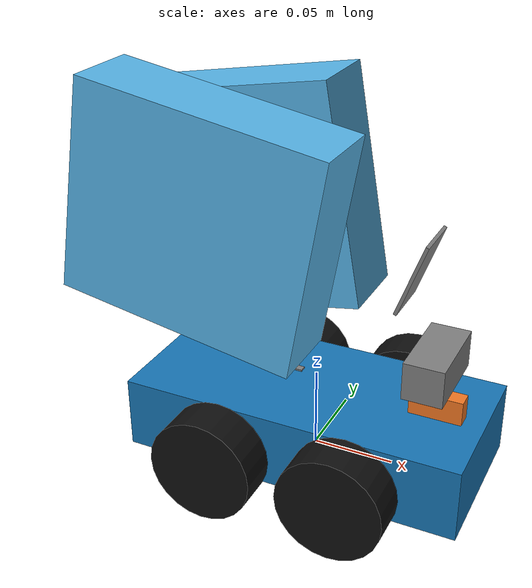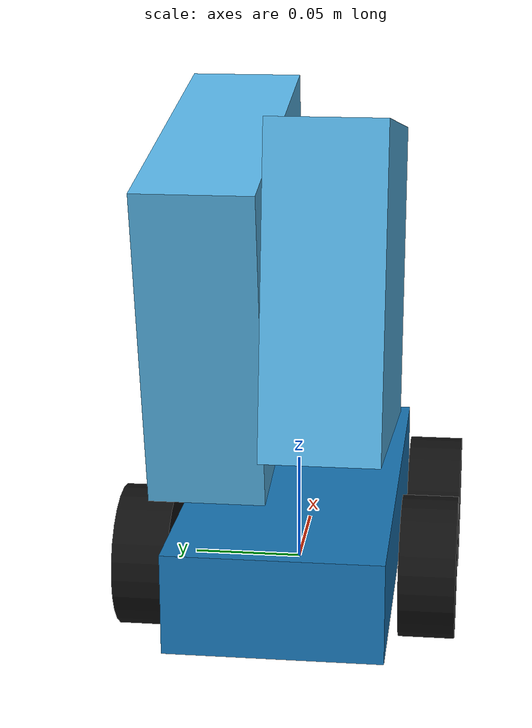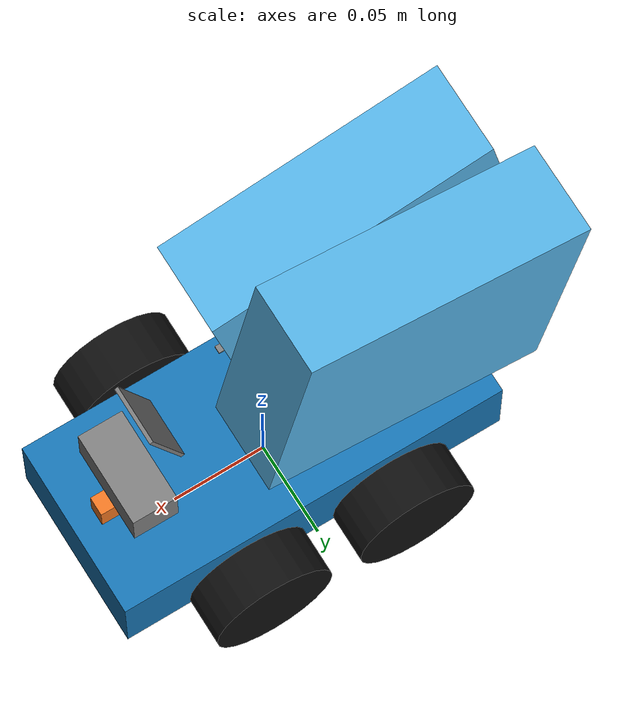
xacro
<?xml version="1.0"?>
<robot name="$(arg bot_name)" xmlns:xacro="http://www.ros.org/wiki/xacro">

    <xacro:include filename="common_properties.xacro" />
    <xacro:include filename="mobile_base.xacro" />
    <xacro:include filename="mobile_base_gazebo.xacro" />
    <xacro:include filename="ir.xacro" />
    <xacro:include filename="ultrasonic.xacro" />
    <xacro:include filename="camera.xacro" />
    <xacro:include filename="wheel.xacro"/>
    <xacro:include filename="mpu5060.xacro"/>
    <xacro:include filename="extension.xacro"/>

    <xacro:arg name="bot_name" default="generic"/>
    <xacro:bot bot_name="$(arg bot_name)"/>

</robot>

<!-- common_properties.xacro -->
<robot xmlns:xacro="http://www.ros.org/wiki/xacro">

    <!-- Original colors -->
    <material name="blue">
        <color rgba="0 0 0.7 1.0" />
    </material>

    <material name="grey">
        <color rgba="0.5 0.5 0.5 1.0" />
    </material>

    <material name="red">
        <color rgba="0.5 0 0 1.0"/>
    </material>

    <!-- Robot Base Colour (Blue, Green, Yellow) -->
    <material name="generic">
        <color rgba="0.09 0.46 0.71 1.0"/>
    </material>
    <material name="twix">
        <color rgba="1 1 0 1.0"/>
    </material>
    <material name="twirl">
        <color rgba="0 1 0 1.0"/>
    </material>

    <material name="accent_orange">
        <color rgba="0.95 0.47 0.14 1.0"/>
    </material>

    <material name="wood_brown">
        <color rgba="0.76 0.60 0.42 1.0"/>
    </material>

    <material name="light_brown">
        <color rgba="0.89 0.722 0.51 1"/>
    </material>

    <material name="headlight_warm">
        <color rgba="1.00 0.96 0.84 1.0"/>
    </material>

    <material name="rubber_black">
        <color rgba="0.06 0.06 0.06 1.0"/>
    </material>

    <material name="sensor_gray">
        <color rgba="0.6 0.6 0.6 1.0"/>
    </material>

    <!-- Inertia macros -->
    <xacro:macro name="box_inertia" params="m x y z o_xyz o_rpy">
        <inertial>
            <mass value="${m}" />
            <origin xyz="${o_xyz}" rpy="${o_rpy}" />
            <inertia
                ixx="${(m/12) * (y*y + z*z)}" ixy="0" ixz="0"
                iyy="${(m/12) * (x*x + z*z)}" iyz="0"
                izz="${(m/12) * (x*x + y*y)}" />
        </inertial>
    </xacro:macro>

    <xacro:macro name="cylinder_inertia" params="m r l o_xyz o_rpy">
        <inertial>
            <mass value="${m}" />
            <origin xyz="${o_xyz}" rpy="${o_rpy}" />
            <inertia
                ixx="${(m/12) * (3*r*r + l*l)}" ixy="0" ixz="0"
                iyy="${(m/12) * (3*r*r + l*l)}" iyz="0"
                izz="${(m/2) * (r*r)}" />
        </inertial>
    </xacro:macro>

    <xacro:macro name="sphere_inertia" params="m r o_xyz o_rpy">
        <inertial>
            <mass value="${m}" />
            <origin xyz="${o_xyz}" rpy="${o_rpy}" />
            <inertia
                ixx="${(2/5) * m * r * r}" ixy="0" ixz="0"
                iyy="${(2/5) * m * r * r}" iyz="0"
                izz="${(2/5) * m * r * r}" />
        </inertial>
    </xacro:macro>

</robot>

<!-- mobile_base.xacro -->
<robot xmlns:xacro="http://www.ros.org/wiki/xacro">
    <xacro:macro name="bot" params="bot_name" >

        <!-- Updated properties to match your robot model -->
        <xacro:property name="base_length" value="0.21"/>
        <xacro:property name="base_width"  value="0.095"/>
        <xacro:property name="base_height" value="0.045"/>
        <xacro:property name="wheel_radius" value="0.032"/>
        <xacro:property name="wheel_length" value="0.025"/>

        <!-- Base Footprint (empty)   -->
        <link name="${bot_name}_base_footprint"/>

        <!-- Fixed transform to base_link (body_link in your model) -->
        <joint name="${bot_name}_base_joint" type="fixed">
            <parent link="${bot_name}_base_footprint"/>
            <child link="${bot_name}_base_link"/>
            <origin xyz="0 0 0.02"/>
        </joint>

        <!-- Base link body  -->
        <link name="${bot_name}_base_link">
            <visual>
                <geometry>
                    <box size="${base_length} ${base_width} ${base_height}"/>
                </geometry>
                <origin xyz="0 0 0"/>
                <material name="${bot_name}"/>
            </visual>
            <collision>
                <geometry>
                    <box size="${base_length} ${base_width} ${base_height}"/>
                </geometry>
                <origin xyz="0 0 0"/>
            </collision>
            <xacro:box_inertia m="1.140" x="${base_length}" y="${base_width}" z="${base_height}"
                    o_xyz="0 0 0" o_rpy="0 0 0"/>
        </link>

        <!-- servo -->
        <joint name="${bot_name}_servo_joint" type="revolute">
            <parent link="${bot_name}_base_link"/>
            <child link="${bot_name}_servo_link"/>
            <origin xyz="0.076 0 0.03" rpy="0 0 0"/>
            <axis xyz="0 0 1"/>
            <limit lower="-1.5708" upper="1.5708" effort="10.0" velocity="5.0"/>
            <dynamics damping="0.1" friction="0.05"/>
        </joint>
        <link name="${bot_name}_servo_link">
            <visual>
                <origin xyz="0 0 0" rpy="0 0 0"/>
                <geometry>
                    <box size="0.032 0.01 0.015"/>
                </geometry>
                <material name="accent_orange"/>
            </visual>
            <collision>
                <origin xyz="0 0 0" rpy="0 0 0"/>
                <geometry>
                    <box size="0.032 0.01 0.015"/>
                </geometry>
            </collision>
            <xacro:box_inertia m="1.0" x="0.035" y="0.01" z="0.015"
                    o_xyz="0 0 0" o_rpy="0 0 0"/>
        </link>

        <!-- wheels -->
        <xacro:wheel bot_name="${bot_name}" prefix="rear_left" invert_x="-1" invert_y="1"/>
        <xacro:wheel bot_name="${bot_name}" prefix="rear_right" invert_x="-1" invert_y="-1"/>
        <xacro:wheel bot_name="${bot_name}" prefix="front_left" invert_x="1" invert_y="1"/>
        <xacro:wheel bot_name="${bot_name}" prefix="front_right" invert_x="1" invert_y="-1"/>

        <!-- sensors -->
        <xacro:camera_sensor bot_name="${bot_name}"/>
        <xacro:ir_sensor bot_name="${bot_name}" position_name="L" />
        <xacro:ir_sensor bot_name="${bot_name}" position_name="M" />
        <xacro:ir_sensor bot_name="${bot_name}" position_name="R" />
        <xacro:ultrasonic_sensor bot_name="${bot_name}"/>
        <xacro:mpu_sensor bot_name="${bot_name}"/>

        <!--visual-->
        <xacro:extension bot_name="${bot_name}" base_width="${base_width}"/>

        <!-- gazebo -->
        <xacro:gazebo_file bot_name="${bot_name}"/>
    </xacro:macro>
</robot>

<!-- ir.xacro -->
<robot xmlns:xacro="http://www.ros.org/wiki/xacro">
<xacro:macro name="ir_sensor" params="bot_name position_name">

    <xacro:property name="ir_length" value="0.01" />
    <xacro:property name="ir_width" value="0.004" />
    <xacro:property name="ir_height" value="0.006" />

    <xacro:property name="y_offset" value="0.0" />
    <xacro:if value="${position_name == 'L'}">
        <xacro:property name="y_offset" value="0.008" />
    </xacro:if>
    <xacro:if value="${position_name == 'R'}">
        <xacro:property name="y_offset" value="-0.008" />
    </xacro:if>
    <!-- else, M would be 0.0 -->

    <link name="${bot_name}_ir_${position_name}_link">
        <visual>
            <geometry>
                <box size="${ir_length} ${ir_width} ${ir_height}" />
            </geometry>
            <material name="grey" />
        </visual>
        <collision>
            <geometry>
                <box size="${ir_length} ${ir_width} ${ir_height}" />
            </geometry>
        </collision>
        <xacro:box_inertia m="0.1" x="${ir_length}" y="${ir_width}" z="${ir_height}"
                           o_xyz="0 0 0" o_rpy="0 0 0" />
    </link>

    <joint name="${bot_name}_${position_name}_base_ir_joint" type="fixed">
        <parent link="${bot_name}_base_link" />
        <child link="${bot_name}_ir_${position_name}_link" />
        <origin xyz="0.0885 ${y_offset} -0.0275" rpy="0 ${pi/2} 0" />
    </joint>

    <link name="${bot_name}_ir_${position_name}_link_optical" />

    <joint name="${bot_name}_ir_${position_name}_optical_joint" type="fixed">
        <origin xyz="0 0 0" rpy="${-pi/2} 0 ${-pi/2}"/>
        <parent link="${bot_name}_ir_${position_name}_link"/>
        <child link="${bot_name}_ir_${position_name}_link_optical"/>
    </joint>

    <gazebo reference="${bot_name}_ir_${position_name}_link">
        <sensor name="${bot_name}_ir_${position_name}" type="camera">
            <camera>
                <horizontal_fov>1.3962634</horizontal_fov>
                <image>
                    <width>640</width>
                    <height>480</height>
                    <format>R8G8B8</format>
                </image>
                <clip>
                    <near>0.001</near>
                    <far>15</far>
                </clip>
                <noise>
                    <type>gaussian</type>
                    <mean>0.0</mean>
                    <stddev>0.007</stddev>
                </noise>
                <optical_frame_id>${bot_name}_ir_${position_name}_link_optical</optical_frame_id>
                <camera_info_topic>${bot_name}_ir_${position_name}/camera_info</camera_info_topic>
            </camera>
            <always_on>1</always_on>
            <update_rate>3</update_rate>
            <visualize>true</visualize>
            <topic>${bot_name}_ir_${position_name}/image_raw</topic>

            <plugin
                filename="gz-sim-camera-system"
                name="gz::sim::systems::Camera"/>
        </sensor>
    </gazebo>

</xacro:macro>
</robot>

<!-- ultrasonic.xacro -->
<robot xmlns:xacro="http://www.ros.org/wiki/xacro">
    <xacro:macro name="ultrasonic_sensor" params="bot_name">
        <xacro:property name="lidar_length" value="0.024" />
        <xacro:property name="lidar_width" value="0.05" />
        <xacro:property name="lidar_height" value="0.023" />

        <link name="${bot_name}_lidar_link">
            <visual>
                <geometry>
                    <box size="${lidar_length} ${lidar_width} ${lidar_height}" />
                </geometry>
                <material name="grey" />
            </visual>
            <xacro:box_inertia m="0.1" x="${lidar_length}" y="${lidar_width}" z="${lidar_height}"
                            o_xyz="0 0 0" o_rpy="0 0 0" />
        </link>

        <joint name="${bot_name}_base_lidar_joint" type="fixed">
            <parent link="${bot_name}_servo_link" />
            <child link="${bot_name}_lidar_link" />
            <origin xyz="-0.0025 0 0.026" rpy="0 0 0" />
            <preserveFixedJoint>true</preserveFixedJoint>
        </joint>

        <gazebo reference="${bot_name}_lidar_link">
            <sensor type="gpu_lidar" name="${bot_name}_lidar_sensor">
                <pose>0 0 0 0 0 0</pose>
                <always_on>true</always_on>
                <visualize>true</visualize>
                <update_rate>10.0</update_rate>

                <topic>${bot_name}/scan</topic>
                <gz_frame_id>${bot_name}_lidar_link</gz_frame_id>

                <lidar>
                    <scan>
                        <horizontal>
                            <samples>1</samples>
                            <resolution>1</resolution>
                            <min_angle>0</min_angle>
                            <max_angle>0</max_angle>
                        </horizontal>
                    </scan>
                    <range>
                        <min>0.05</min>
                        <max>5.0</max>
                        <resolution>0.01</resolution>
                    </range>
                </lidar>
            </sensor>
        </gazebo>
    </xacro:macro>
</robot>

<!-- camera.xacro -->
<robot xmlns:xacro="http://www.ros.org/wiki/xacro">
    <xacro:macro name="camera_sensor" params="bot_name" >

        <xacro:property name="camera_length" value="0.002" />
        <xacro:property name="camera_width" value="0.031" />
        <xacro:property name="camera_height" value="0.046" />

        <link name="${bot_name}_camera_link">
            <visual>
                <geometry>
                    <box size="${camera_length} ${camera_width} ${camera_height}" />
                </geometry>
                <material name="grey" />
            </visual>
            <collision>
                <geometry>
                    <box size="${camera_length} ${camera_width} ${camera_height}" />
                </geometry>
            </collision>
            <xacro:box_inertia m="0.1" x="${camera_length}" y="${camera_width}" z="${camera_height}"
                            o_xyz="0 0 0" o_rpy="0 0 0" />
        </link>

        <joint name="${bot_name}_base_camera_joint" type="fixed">
            <parent link="${bot_name}_servo_link" />
            <child link="${bot_name}_camera_link" />
            <origin xyz="-0.016 0 0.082" rpy="0 0.349 0" />
        </joint>

        <link name="${bot_name}_camera_link_optical" />

        <joint name="${bot_name}_optical_joint" type="fixed">
            <origin xyz="0 0 0" rpy="0 0 0"/>
            <parent link="${bot_name}_camera_link"/>
            <child link="${bot_name}_camera_link_optical"/>
        </joint>

        <gazebo reference="${bot_name}_camera_link">
            <sensor name="${bot_name}_camera" type="camera">
                <camera>
                    <horizontal_fov>1.3962634</horizontal_fov>
                    <image>
                        <width>640</width>
                        <height>480</height>
                        <format>R8G8B8</format>
                    </image>
                    <clip>
                        <near>0.0001</near>
                        <far>15</far>
                    </clip>
                    <noise>
                        <type>gaussian</type>
                        <mean>0.0</mean>
                        <stddev>0.007</stddev>
                    </noise>
                    <optical_frame_id>${bot_name}_camera_link_optical</optical_frame_id>
                    <camera_info_topic>${bot_name}_camera/camera_info</camera_info_topic>
                </camera>
                <always_on>1</always_on>
                <update_rate>3</update_rate>
                <visualize>true</visualize>
                <topic>${bot_name}_camera/image_raw</topic>

                <plugin
                    filename="gz-sim-camera-system"
                    name="camera_plugin"/>
            </sensor>
        </gazebo>

    </xacro:macro>
</robot>

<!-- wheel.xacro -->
<robot xmlns:xacro="http://www.ros.org/wiki/xacro">
    <xacro:macro name="wheel" params="bot_name prefix invert_x invert_y">

        <link name="${bot_name}_${prefix}_wheel_link">
            <visual>
                <geometry>
                    <cylinder radius="${wheel_radius}" length="${wheel_length}"/>
                </geometry>
                <origin xyz="0 0 0" rpy="${pi/2} 0 0"/>
                <material name="rubber_black"/>
            </visual>
            <collision>
                <geometry>
                    <sphere radius="${wheel_radius}"/>
                </geometry>
                <origin xyz="0 0 0" rpy="${pi/2} 0 0"/>
            </collision>
            <xacro:cylinder_inertia m="1.0" r="${wheel_radius}" l="${wheel_length}"
                o_xyz="0 0 0" o_rpy="${pi/2.0} 0 0"/>
        </link>

        <joint name="${bot_name}_${prefix}_wheel_joint" type="continuous">
            <parent link="${bot_name}_base_link"/>
            <child link="${bot_name}_${prefix}_wheel_link"/>
            <origin xyz="${invert_x*0.04} ${(invert_y*base_width/2.0) + (invert_y*0.016)} -0.005" rpy="0 0 0"/>
            <axis xyz="0 1 0"/>
        </joint>

    </xacro:macro>
</robot>

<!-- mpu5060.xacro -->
<robot xmlns:xacro="http://www.ros.org/wiki/xacro">
    <xacro:macro name="mpu_sensor" params="bot_name">
        <xacro:property name="mpu_length" value="0.004" />
        <xacro:property name="mpu_width" value="0.004" />
        <xacro:property name="mpu_height" value="0.001" />

        <link name="${bot_name}_mpu_link">
            <visual>
                <geometry>
                    <box size="${mpu_length} ${mpu_width} ${mpu_height}" />
                </geometry>
                <material name="grey" />
            </visual>
            <collision>
                <geometry>
                    <box size="${mpu_length} ${mpu_width} ${mpu_height}" />
                </geometry>
            </collision>
            <xacro:box_inertia m="0.1" x="${mpu_length}" y="${mpu_width}" z="${mpu_height}"
                            o_xyz="0 0 0" o_rpy="0 0 0" />
        </link>

        <joint name="${bot_name}_base_mpu_joint" type="fixed">
            <parent link="${bot_name}_base_link" />
            <child link="${bot_name}_mpu_link" />
            <origin xyz="0.0035 -0.032 0.0525" rpy="0 0 0" />
        </joint>

        <gazebo reference="${bot_name}_base_link">
            <sensor type="imu" name="${bot_name}_imu_sensor">
                <always_on>true</always_on>
                <update_rate>100</update_rate> <visualize>true</visualize>
                <topic>/${bot_name}/imu</topic>

                <gz_plugins>
                    <plugin filename="gz-sim-imu-system"
                            name="gz::sim::systems::Imu">
                    </plugin>
                </gz_plugins>

                <imu>
                    <orientation_reference_frame>
                        <localization>ENU</localization>
                    </orientation_reference_frame>
                    <enable_orientation>true</enable_orientation>

                    <angular_velocity>
                        <x>
                            <noise type="gaussian">
                                <mean>0.0</mean>
                                <stddev>2e-4</stddev> <bias_mean>0.0000075</bias_mean>
                                <bias_stddev>0.0000008</bias_stddev>
                            </noise>
                        </x>
                        <y>
                            <noise type="gaussian">
                                <mean>0.0</mean>
                                <stddev>2e-4</stddev> <bias_mean>0.0000075</bias_mean>
                                <bias_stddev>0.0000008</bias_stddev>
                            </noise>
                        </y>
                        <z>
                            <noise type="gaussian">
                                <mean>0.0</mean>
                                <stddev>2e-4</stddev> <bias_mean>0.0000075</bias_mean>
                                <bias_stddev>0.0000008</bias_stddev>
                            </noise>
                        </z>
                        </angular_velocity>
                    <linear_acceleration>
                        <x>
                            <noise type="gaussian">
                                <mean>0.0</mean>
                                <stddev>1.7e-2</stddev> <bias_mean>0.1</bias_mean>
                                <bias_stddev>0.001</bias_stddev>
                            </noise>
                        </x>
                        <y>
                            <noise type="gaussian">
                                <mean>0.0</mean>
                                <stddev>1.7e-2</stddev> <bias_mean>0.1</bias_mean>
                                <bias_stddev>0.001</bias_stddev>
                            </noise>
                        </y>
                        <z>
                            <noise type="gaussian">
                                <mean>0.0</mean>
                                <stddev>1.7e-2</stddev> <bias_mean>0.1</bias_mean>
                                <bias_stddev>0.001</bias_stddev>
                            </noise>
                        </z>
                        </linear_acceleration>
                </imu>
            </sensor>
        </gazebo>
    </xacro:macro>
</robot>

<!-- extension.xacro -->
<robot xmlns:xacro="http://www.ros.org/wiki/xacro">
    <xacro:macro name="extension" params="bot_name base_width">

        <!-- Useful constants -->
        <xacro:property name="length" value="0.15"/>
        <xacro:property name="height" value="0.132"/>
        <xacro:property name="tilt" value="${10 * pi / 180.0}"/>
        <xacro:property name="offset_x" value="-0.06"/>

        <!-- Link -->
        <link name="${bot_name}_extension_link">

            <!-- LEFT PANEL -->
            <visual>
            <origin xyz="0 ${base_width/4} ${height/2}" rpy="0 ${-tilt} 0"/>
            <geometry>
                <box size="${length} ${base_width/2} ${height}"/>
            </geometry>
            </visual>

            <collision>
            <origin xyz="0 ${base_width/4} ${height/2}" rpy="0 ${-tilt} 0"/>
            <geometry>
                <box size="${length} ${base_width/2} ${height}"/>
            </geometry>
            </collision>

            <!-- RIGHT PANEL -->
            <visual>
            <origin xyz="0 ${-base_width/4} ${height/2}" rpy="0 ${tilt} 0"/>
            <geometry>
                <box size="${length} ${base_width/2} ${height}"/>
            </geometry>
            </visual>

            <collision>
            <origin xyz="0 ${-base_width/4} ${height/2}" rpy="0 ${tilt} 0"/>
            <geometry>
                <box size="${length} ${base_width/2} ${height}"/>
            </geometry>
            </collision>

        </link>

        <!-- Fixed joint to robot base -->
        <joint name="${bot_name}_extension_joint" type="fixed">
            <parent link="${bot_name}_base_link"/>
            <child link="${bot_name}_extension_link"/>
            <origin xyz="${offset_x} 0 ${height/2}" rpy="0 0 0"/>
        </joint>

    </xacro:macro>
</robot>
